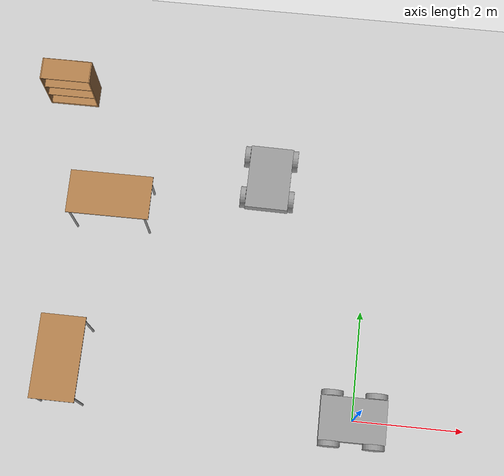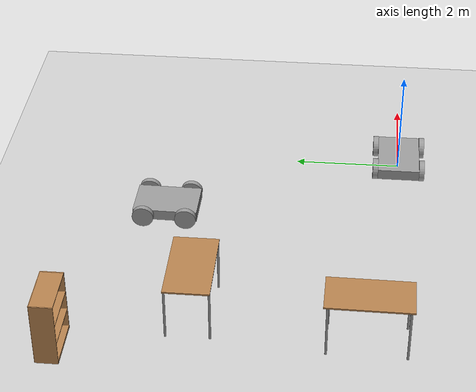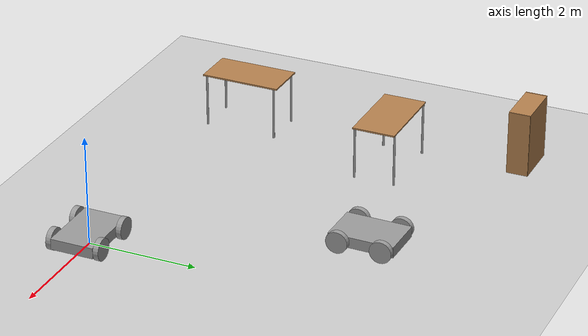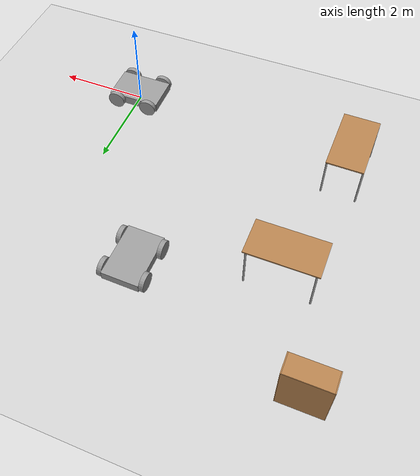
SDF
<sdf version="1.6">
 <world name="default">
  <model name="ground_plane">
   <static>1</static>
   <link name="link">
    <collision name="collision">
     <geometry><plane><normal>0 0 1</normal><size>100 100</size></plane></geometry>
     <surface>
      <contact><collide_bitmask>65535</collide_bitmask></contact>
      <friction><ode><mu>100</mu><mu2>50</mu2></ode></friction>
     </surface>
    </collision>
    <visual name="visual">
     <cast_shadows>0</cast_shadows>
     <geometry><plane><normal>0 0 1</normal><size>100 100</size></plane></geometry>
     <material>
      <script><uri>file://media/materials/scripts/gazebo.material</uri><name>Gazebo/Grey</name></script>
     </material>
    </visual>
   </link>
  </model>
  <model name="myrobot">
   <link name="link_0">
    <inertial>
     <mass>1</mass>
     <inertia>
      <ixx>0.166667</ixx>
      <ixy>0</ixy>
      <ixz>0</ixz>
      <iyy>0.166667</iyy>
      <iyz>0</iyz>
      <izz>0.166667</izz>
     </inertia>
    </inertial>
    <visual name="visual">
     <geometry><box><size>1.2 0.8 0.2</size></box></geometry>
     <material>
      <lighting>1</lighting>
      <script><uri>file://media/materials/scripts/gazebo.material</uri><name>Gazebo/Grey</name></script>
      <shader type="pixel"><normal_map>__default__</normal_map></shader>
      <ambient>0.3 0.3 0.3 1</ambient>
      <diffuse>0.7 0.7 0.7 1</diffuse>
      <specular>0.01 0.01 0.01 1</specular>
      <emissive>0 0 0 1</emissive>
     </material>
    </visual>
    <collision name="collision">
     <geometry><box><size>1.2 0.8 0.2</size></box></geometry>
     <surface>
      <friction>
       <ode><mu>1</mu><mu2>1</mu2><fdir1>0 0 0</fdir1><slip1>0</slip1><slip2>0</slip2></ode>
       <torsional>
        <coefficient>1</coefficient>
        <patch_radius>0</patch_radius>
        <surface_radius>0</surface_radius>
        <use_patch_radius>1</use_patch_radius>
        <ode><slip>0</slip></ode>
       </torsional>
      </friction>
      <bounce><restitution_coefficient>0</restitution_coefficient><threshold>1e+06</threshold></bounce>
      <contact>
       <collide_without_contact>0</collide_without_contact>
       <collide_without_contact_bitmask>1</collide_without_contact_bitmask>
       <collide_bitmask>1</collide_bitmask>
       <ode>
        <soft_cfm>0</soft_cfm>
        <soft_erp>0.2</soft_erp>
        <kp>1e+13</kp>
        <kd>1</kd>
        <max_vel>0.01</max_vel>
        <min_depth>0</min_depth>
       </ode>
       <bullet>
        <split_impulse>1</split_impulse>
        <split_impulse_penetration_threshold>-0.01</split_impulse_penetration_threshold>
        <soft_cfm>0</soft_cfm>
        <soft_erp>0.2</soft_erp>
        <kp>1e+13</kp>
        <kd>1</kd>
       </bullet>
      </contact>
     </surface>
    </collision>
   </link>
   <link name="link_4">
    <pose>-0.4 -0.450019 0 1.5707 -0 0</pose>
    <inertial>
     <mass>1</mass>
     <inertia><ixx>0.145833</ixx><ixy>0</ixy><ixz>0</ixz><iyy>0.145833</iyy><iyz>0</iyz><izz>0.125</izz></inertia>
    </inertial>
    <visual name="visual">
     <geometry><cylinder><radius>0.2</radius><length>0.1</length></cylinder></geometry>
     <material>
      <lighting>1</lighting>
      <script><uri>file://media/materials/scripts/gazebo.material</uri><name>Gazebo/Grey</name></script>
      <shader type="pixel"><normal_map>__default__</normal_map></shader>
      <ambient>0.3 0.3 0.3 1</ambient>
      <diffuse>0.7 0.7 0.7 1</diffuse>
      <specular>0.01 0.01 0.01 1</specular>
      <emissive>0 0 0 1</emissive>
     </material>
    </visual>
    <collision name="collision">
     <geometry><cylinder><radius>0.2</radius><length>0.1</length></cylinder></geometry>
     <surface>
      <friction>
       <ode><mu>1</mu><mu2>1</mu2><fdir1>0 0 0</fdir1><slip1>0</slip1><slip2>0</slip2></ode>
       <torsional>
        <coefficient>1</coefficient>
        <patch_radius>0</patch_radius>
        <surface_radius>0</surface_radius>
        <use_patch_radius>1</use_patch_radius>
        <ode><slip>0</slip></ode>
       </torsional>
      </friction>
      <bounce><restitution_coefficient>0</restitution_coefficient><threshold>1e+06</threshold></bounce>
      <contact>
       <collide_without_contact>0</collide_without_contact>
       <collide_without_contact_bitmask>1</collide_without_contact_bitmask>
       <collide_bitmask>1</collide_bitmask>
       <ode>
        <soft_cfm>0</soft_cfm>
        <soft_erp>0.2</soft_erp>
        <kp>1e+13</kp>
        <kd>1</kd>
        <max_vel>0.01</max_vel>
        <min_depth>0</min_depth>
       </ode>
       <bullet>
        <split_impulse>1</split_impulse>
        <split_impulse_penetration_threshold>-0.01</split_impulse_penetration_threshold>
        <soft_cfm>0</soft_cfm>
        <soft_erp>0.2</soft_erp>
        <kp>1e+13</kp>
        <kd>1</kd>
       </bullet>
      </contact>
     </surface>
    </collision>
   </link>
   <link name="link_4_clone">
    <pose>-0.4 0.450019 0 1.5707 -0 0</pose>
    <inertial>
     <mass>1</mass>
     <inertia><ixx>0.145833</ixx><ixy>0</ixy><ixz>0</ixz><iyy>0.145833</iyy><iyz>0</iyz><izz>0.125</izz></inertia>
    </inertial>
    <visual name="visual">
     <geometry><cylinder><radius>0.2</radius><length>0.1</length></cylinder></geometry>
     <material>
      <lighting>1</lighting>
      <script><uri>file://media/materials/scripts/gazebo.material</uri><name>Gazebo/Grey</name></script>
      <shader type="pixel"><normal_map>__default__</normal_map></shader>
      <ambient>0.3 0.3 0.3 1</ambient>
      <diffuse>0.7 0.7 0.7 1</diffuse>
      <specular>0.01 0.01 0.01 1</specular>
      <emissive>0 0 0 1</emissive>
     </material>
    </visual>
    <collision name="collision">
     <geometry><cylinder><radius>0.2</radius><length>0.1</length></cylinder></geometry>
     <surface>
      <friction>
       <ode><mu>1</mu><mu2>1</mu2><fdir1>0 0 0</fdir1><slip1>0</slip1><slip2>0</slip2></ode>
       <torsional>
        <coefficient>1</coefficient>
        <patch_radius>0</patch_radius>
        <surface_radius>0</surface_radius>
        <use_patch_radius>1</use_patch_radius>
        <ode><slip>0</slip></ode>
       </torsional>
      </friction>
      <bounce><restitution_coefficient>0</restitution_coefficient><threshold>1e+06</threshold></bounce>
      <contact>
       <collide_without_contact>0</collide_without_contact>
       <collide_without_contact_bitmask>1</collide_without_contact_bitmask>
       <collide_bitmask>1</collide_bitmask>
       <ode>
        <soft_cfm>0</soft_cfm>
        <soft_erp>0.2</soft_erp>
        <kp>1e+13</kp>
        <kd>1</kd>
        <max_vel>0.01</max_vel>
        <min_depth>0</min_depth>
       </ode>
       <bullet>
        <split_impulse>1</split_impulse>
        <split_impulse_penetration_threshold>-0.01</split_impulse_penetration_threshold>
        <soft_cfm>0</soft_cfm>
        <soft_erp>0.2</soft_erp>
        <kp>1e+13</kp>
        <kd>1</kd>
       </bullet>
      </contact>
     </surface>
    </collision>
   </link>
   <link name="link_4_clone_0">
    <pose>0.4 -0.450019 0 1.5707 -0 0</pose>
    <inertial>
     <mass>1</mass>
     <inertia><ixx>0.145833</ixx><ixy>0</ixy><ixz>0</ixz><iyy>0.145833</iyy><iyz>0</iyz><izz>0.125</izz></inertia>
    </inertial>
    <visual name="visual">
     <geometry><cylinder><radius>0.2</radius><length>0.1</length></cylinder></geometry>
     <material>
      <lighting>1</lighting>
      <script><uri>file://media/materials/scripts/gazebo.material</uri><name>Gazebo/Grey</name></script>
      <shader type="pixel"><normal_map>__default__</normal_map></shader>
      <ambient>0.3 0.3 0.3 1</ambient>
      <diffuse>0.7 0.7 0.7 1</diffuse>
      <specular>0.01 0.01 0.01 1</specular>
      <emissive>0 0 0 1</emissive>
     </material>
    </visual>
    <collision name="collision">
     <geometry><cylinder><radius>0.2</radius><length>0.1</length></cylinder></geometry>
     <surface>
      <friction>
       <ode><mu>1</mu><mu2>1</mu2><fdir1>0 0 0</fdir1><slip1>0</slip1><slip2>0</slip2></ode>
       <torsional>
        <coefficient>1</coefficient>
        <patch_radius>0</patch_radius>
        <surface_radius>0</surface_radius>
        <use_patch_radius>1</use_patch_radius>
        <ode><slip>0</slip></ode>
       </torsional>
      </friction>
      <bounce><restitution_coefficient>0</restitution_coefficient><threshold>1e+06</threshold></bounce>
      <contact>
       <collide_without_contact>0</collide_without_contact>
       <collide_without_contact_bitmask>1</collide_without_contact_bitmask>
       <collide_bitmask>1</collide_bitmask>
       <ode>
        <soft_cfm>0</soft_cfm>
        <soft_erp>0.2</soft_erp>
        <kp>1e+13</kp>
        <kd>1</kd>
        <max_vel>0.01</max_vel>
        <min_depth>0</min_depth>
       </ode>
       <bullet>
        <split_impulse>1</split_impulse>
        <split_impulse_penetration_threshold>-0.01</split_impulse_penetration_threshold>
        <soft_cfm>0</soft_cfm>
        <soft_erp>0.2</soft_erp>
        <kp>1e+13</kp>
        <kd>1</kd>
       </bullet>
      </contact>
     </surface>
    </collision>
   </link>
   <link name="link_4_clone_clone">
    <pose>0.4 0.450019 0 1.5707 -0 0</pose>
    <inertial>
     <mass>1</mass>
     <inertia><ixx>0.145833</ixx><ixy>0</ixy><ixz>0</ixz><iyy>0.145833</iyy><iyz>0</iyz><izz>0.125</izz></inertia>
    </inertial>
    <visual name="visual">
     <geometry><cylinder><radius>0.2</radius><length>0.1</length></cylinder></geometry>
     <material>
      <lighting>1</lighting>
      <script><uri>file://media/materials/scripts/gazebo.material</uri><name>Gazebo/Grey</name></script>
      <shader type="pixel"><normal_map>__default__</normal_map></shader>
      <ambient>0.3 0.3 0.3 1</ambient>
      <diffuse>0.7 0.7 0.7 1</diffuse>
      <specular>0.01 0.01 0.01 1</specular>
      <emissive>0 0 0 1</emissive>
     </material>
    </visual>
    <collision name="collision">
     <geometry><cylinder><radius>0.2</radius><length>0.1</length></cylinder></geometry>
     <surface>
      <friction>
       <ode><mu>1</mu><mu2>1</mu2><fdir1>0 0 0</fdir1><slip1>0</slip1><slip2>0</slip2></ode>
       <torsional>
        <coefficient>1</coefficient>
        <patch_radius>0</patch_radius>
        <surface_radius>0</surface_radius>
        <use_patch_radius>1</use_patch_radius>
        <ode><slip>0</slip></ode>
       </torsional>
      </friction>
      <bounce><restitution_coefficient>0</restitution_coefficient><threshold>1e+06</threshold></bounce>
      <contact>
       <collide_without_contact>0</collide_without_contact>
       <collide_without_contact_bitmask>1</collide_without_contact_bitmask>
       <collide_bitmask>1</collide_bitmask>
       <ode>
        <soft_cfm>0</soft_cfm>
        <soft_erp>0.2</soft_erp>
        <kp>1e+13</kp>
        <kd>1</kd>
        <max_vel>0.01</max_vel>
        <min_depth>0</min_depth>
       </ode>
       <bullet>
        <split_impulse>1</split_impulse>
        <split_impulse_penetration_threshold>-0.01</split_impulse_penetration_threshold>
        <soft_cfm>0</soft_cfm>
        <soft_erp>0.2</soft_erp>
        <kp>1e+13</kp>
        <kd>1</kd>
       </bullet>
      </contact>
     </surface>
    </collision>
   </link>
   <joint name="link_0_JOINT_6" type="revolute">
    <parent>link_0</parent>
    <child>link_4</child>
    <axis>
     <xyz>1 0 0</xyz>
     <use_parent_model_frame>0</use_parent_model_frame>
     <limit>
      <lower>-1.79769e+308</lower>
      <upper>1.79769e+308</upper>
      <effort>-1</effort>
      <velocity>-1</velocity>
     </limit>
     <dynamics>
      <spring_reference>0</spring_reference>
      <spring_stiffness>0</spring_stiffness>
      <damping>0</damping>
     </dynamics>
    </axis>
    <physics>
     <ode><limit><cfm>0</cfm><erp>0.2</erp></limit><suspension><cfm>0</cfm><erp>0.2</erp></suspension></ode>
    </physics>
   </joint>
   <joint name="link_0_JOINT_7" type="revolute">
    <parent>link_0</parent>
    <child>link_4_clone</child>
    <axis>
     <xyz>1 0 0</xyz>
     <use_parent_model_frame>0</use_parent_model_frame>
     <limit>
      <lower>-1.79769e+308</lower>
      <upper>1.79769e+308</upper>
      <effort>-1</effort>
      <velocity>-1</velocity>
     </limit>
     <dynamics>
      <spring_reference>0</spring_reference>
      <spring_stiffness>0</spring_stiffness>
      <damping>0</damping>
     </dynamics>
    </axis>
    <physics>
     <ode><limit><cfm>0</cfm><erp>0.2</erp></limit><suspension><cfm>0</cfm><erp>0.2</erp></suspension></ode>
    </physics>
   </joint>
   <joint name="link_0_JOINT_8" type="revolute">
    <parent>link_0</parent>
    <child>link_4_clone_0</child>
    <axis>
     <xyz>1 0 0</xyz>
     <use_parent_model_frame>0</use_parent_model_frame>
     <limit>
      <lower>-1.79769e+308</lower>
      <upper>1.79769e+308</upper>
      <effort>-1</effort>
      <velocity>-1</velocity>
     </limit>
     <dynamics>
      <spring_reference>0</spring_reference>
      <spring_stiffness>0</spring_stiffness>
      <damping>0</damping>
     </dynamics>
    </axis>
    <physics>
     <ode><limit><cfm>0</cfm><erp>0.2</erp></limit><suspension><cfm>0</cfm><erp>0.2</erp></suspension></ode>
    </physics>
   </joint>
   <joint name="link_0_JOINT_9" type="revolute">
    <parent>link_0</parent>
    <child>link_4_clone_clone</child>
    <axis>
     <xyz>1 0 0</xyz>
     <use_parent_model_frame>0</use_parent_model_frame>
     <limit>
      <lower>-1.79769e+308</lower>
      <upper>1.79769e+308</upper>
      <effort>-1</effort>
      <velocity>-1</velocity>
     </limit>
     <dynamics>
      <spring_reference>0</spring_reference>
      <spring_stiffness>0</spring_stiffness>
      <damping>0</damping>
     </dynamics>
    </axis>
    <physics>
     <ode><limit><cfm>0</cfm><erp>0.2</erp></limit><suspension><cfm>0</cfm><erp>0.2</erp></suspension></ode>
    </physics>
   </joint>
   <static>0</static>
   <pose>-0.000763 -0.003639 0.199997 -6e-06 0 0.001972</pose>
  </model>
  <model name="table">
   <static>1</static>
   <link name="link">
    <collision name="surface">
     <pose>0 0 1 0 -0 0</pose>
     <geometry><box><size>1.5 0.8 0.03</size></box></geometry>
     <surface><friction><ode><mu>0.6</mu><mu2>0.6</mu2></ode></friction></surface>
    </collision>
    <visual name="visual1">
     <pose>0 0 1 0 -0 0</pose>
     <geometry><box><size>1.5 0.8 0.03</size></box></geometry>
     <material>
      <script><uri>file://media/materials/scripts/gazebo.material</uri><name>Gazebo/Wood</name></script>
     </material>
    </visual>
    <collision name="front_left_leg">
     <pose>0.68 0.38 0.5 0 -0 0</pose>
     <geometry><cylinder><radius>0.02</radius><length>1</length></cylinder></geometry>
    </collision>
    <visual name="front_left_leg">
     <pose>0.68 0.38 0.5 0 -0 0</pose>
     <geometry><cylinder><radius>0.02</radius><length>1</length></cylinder></geometry>
     <material>
      <script><uri>file://media/materials/scripts/gazebo.material</uri><name>Gazebo/Grey</name></script>
     </material>
    </visual>
    <collision name="front_right_leg">
     <pose>0.68 -0.38 0.5 0 -0 0</pose>
     <geometry><cylinder><radius>0.02</radius><length>1</length></cylinder></geometry>
    </collision>
    <visual name="front_right_leg">
     <pose>0.68 -0.38 0.5 0 -0 0</pose>
     <geometry><cylinder><radius>0.02</radius><length>1</length></cylinder></geometry>
     <material>
      <script><uri>file://media/materials/scripts/gazebo.material</uri><name>Gazebo/Grey</name></script>
     </material>
    </visual>
    <collision name="back_right_leg">
     <pose>-0.68 -0.38 0.5 0 -0 0</pose>
     <geometry><cylinder><radius>0.02</radius><length>1</length></cylinder></geometry>
    </collision>
    <visual name="back_right_leg">
     <pose>-0.68 -0.38 0.5 0 -0 0</pose>
     <geometry><cylinder><radius>0.02</radius><length>1</length></cylinder></geometry>
     <material>
      <script><uri>file://media/materials/scripts/gazebo.material</uri><name>Gazebo/Grey</name></script>
     </material>
    </visual>
    <collision name="back_left_leg">
     <pose>-0.68 0.38 0.5 0 -0 0</pose>
     <geometry><cylinder><radius>0.02</radius><length>1</length></cylinder></geometry>
    </collision>
    <visual name="back_left_leg">
     <pose>-0.68 0.38 0.5 0 -0 0</pose>
     <geometry><cylinder><radius>0.02</radius><length>1</length></cylinder></geometry>
     <material>
      <script><uri>file://media/materials/scripts/gazebo.material</uri><name>Gazebo/Grey</name></script>
     </material>
    </visual>
   </link>
   <pose>-4.73527 3.51811 0 0 -0 0</pose>
  </model>
  <model name="table_clone_clone_0">
   <static>1</static>
   <link name="link">
    <collision name="surface">
     <pose>0 0 1 0 -0 0</pose>
     <geometry><box><size>1.5 0.8 0.03</size></box></geometry>
     <surface><friction><ode><mu>0.6</mu><mu2>0.6</mu2></ode></friction></surface>
    </collision>
    <visual name="visual1">
     <pose>0 0 1 0 -0 0</pose>
     <geometry><box><size>1.5 0.8 0.03</size></box></geometry>
     <material>
      <script><uri>file://media/materials/scripts/gazebo.material</uri><name>Gazebo/Wood</name></script>
     </material>
    </visual>
    <collision name="front_left_leg">
     <pose>0.68 0.38 0.5 0 -0 0</pose>
     <geometry><cylinder><radius>0.02</radius><length>1</length></cylinder></geometry>
    </collision>
    <visual name="front_left_leg">
     <pose>0.68 0.38 0.5 0 -0 0</pose>
     <geometry><cylinder><radius>0.02</radius><length>1</length></cylinder></geometry>
     <material>
      <script><uri>file://media/materials/scripts/gazebo.material</uri><name>Gazebo/Grey</name></script>
     </material>
    </visual>
    <collision name="front_right_leg">
     <pose>0.68 -0.38 0.5 0 -0 0</pose>
     <geometry><cylinder><radius>0.02</radius><length>1</length></cylinder></geometry>
    </collision>
    <visual name="front_right_leg">
     <pose>0.68 -0.38 0.5 0 -0 0</pose>
     <geometry><cylinder><radius>0.02</radius><length>1</length></cylinder></geometry>
     <material>
      <script><uri>file://media/materials/scripts/gazebo.material</uri><name>Gazebo/Grey</name></script>
     </material>
    </visual>
    <collision name="back_right_leg">
     <pose>-0.68 -0.38 0.5 0 -0 0</pose>
     <geometry><cylinder><radius>0.02</radius><length>1</length></cylinder></geometry>
    </collision>
    <visual name="back_right_leg">
     <pose>-0.68 -0.38 0.5 0 -0 0</pose>
     <geometry><cylinder><radius>0.02</radius><length>1</length></cylinder></geometry>
     <material>
      <script><uri>file://media/materials/scripts/gazebo.material</uri><name>Gazebo/Grey</name></script>
     </material>
    </visual>
    <collision name="back_left_leg">
     <pose>-0.68 0.38 0.5 0 -0 0</pose>
     <geometry><cylinder><radius>0.02</radius><length>1</length></cylinder></geometry>
    </collision>
    <visual name="back_left_leg">
     <pose>-0.68 0.38 0.5 0 -0 0</pose>
     <geometry><cylinder><radius>0.02</radius><length>1</length></cylinder></geometry>
     <material>
      <script><uri>file://media/materials/scripts/gazebo.material</uri><name>Gazebo/Grey</name></script>
     </material>
    </visual>
   </link>
   <pose>-5.24453 0.50186 0 0 -0 1.5628</pose>
  </model>
  <model name="myrobot_clone">
   <link name="link_0">
    <inertial>
     <mass>1</mass>
     <inertia>
      <ixx>0.166667</ixx>
      <ixy>0</ixy>
      <ixz>0</ixz>
      <iyy>0.166667</iyy>
      <iyz>0</iyz>
      <izz>0.166667</izz>
     </inertia>
    </inertial>
    <visual name="visual">
     <geometry><box><size>1.2 0.8 0.2</size></box></geometry>
     <material>
      <lighting>1</lighting>
      <script><uri>file://media/materials/scripts/gazebo.material</uri><name>Gazebo/Grey</name></script>
      <shader type="pixel"><normal_map>__default__</normal_map></shader>
      <ambient>0.3 0.3 0.3 1</ambient>
      <diffuse>0.7 0.7 0.7 1</diffuse>
      <specular>0.01 0.01 0.01 1</specular>
      <emissive>0 0 0 1</emissive>
     </material>
    </visual>
    <collision name="collision">
     <geometry><box><size>1.2 0.8 0.2</size></box></geometry>
     <surface>
      <friction>
       <ode><mu>1</mu><mu2>1</mu2><fdir1>0 0 0</fdir1><slip1>0</slip1><slip2>0</slip2></ode>
       <torsional>
        <coefficient>1</coefficient>
        <patch_radius>0</patch_radius>
        <surface_radius>0</surface_radius>
        <use_patch_radius>1</use_patch_radius>
        <ode><slip>0</slip></ode>
       </torsional>
      </friction>
      <bounce><restitution_coefficient>0</restitution_coefficient><threshold>1e+06</threshold></bounce>
      <contact>
       <collide_without_contact>0</collide_without_contact>
       <collide_without_contact_bitmask>1</collide_without_contact_bitmask>
       <collide_bitmask>1</collide_bitmask>
       <ode>
        <soft_cfm>0</soft_cfm>
        <soft_erp>0.2</soft_erp>
        <kp>1e+13</kp>
        <kd>1</kd>
        <max_vel>0.01</max_vel>
        <min_depth>0</min_depth>
       </ode>
       <bullet>
        <split_impulse>1</split_impulse>
        <split_impulse_penetration_threshold>-0.01</split_impulse_penetration_threshold>
        <soft_cfm>0</soft_cfm>
        <soft_erp>0.2</soft_erp>
        <kp>1e+13</kp>
        <kd>1</kd>
       </bullet>
      </contact>
     </surface>
    </collision>
   </link>
   <link name="link_4">
    <pose>-0.4 -0.450019 0 1.5707 -0 0</pose>
    <inertial>
     <mass>1</mass>
     <inertia><ixx>0.145833</ixx><ixy>0</ixy><ixz>0</ixz><iyy>0.145833</iyy><iyz>0</iyz><izz>0.125</izz></inertia>
    </inertial>
    <visual name="visual">
     <geometry><cylinder><radius>0.2</radius><length>0.1</length></cylinder></geometry>
     <material>
      <lighting>1</lighting>
      <script><uri>file://media/materials/scripts/gazebo.material</uri><name>Gazebo/Grey</name></script>
      <shader type="pixel"><normal_map>__default__</normal_map></shader>
      <ambient>0.3 0.3 0.3 1</ambient>
      <diffuse>0.7 0.7 0.7 1</diffuse>
      <specular>0.01 0.01 0.01 1</specular>
      <emissive>0 0 0 1</emissive>
     </material>
    </visual>
    <collision name="collision">
     <geometry><cylinder><radius>0.2</radius><length>0.1</length></cylinder></geometry>
     <surface>
      <friction>
       <ode><mu>1</mu><mu2>1</mu2><fdir1>0 0 0</fdir1><slip1>0</slip1><slip2>0</slip2></ode>
       <torsional>
        <coefficient>1</coefficient>
        <patch_radius>0</patch_radius>
        <surface_radius>0</surface_radius>
        <use_patch_radius>1</use_patch_radius>
        <ode><slip>0</slip></ode>
       </torsional>
      </friction>
      <bounce><restitution_coefficient>0</restitution_coefficient><threshold>1e+06</threshold></bounce>
      <contact>
       <collide_without_contact>0</collide_without_contact>
       <collide_without_contact_bitmask>1</collide_without_contact_bitmask>
       <collide_bitmask>1</collide_bitmask>
       <ode>
        <soft_cfm>0</soft_cfm>
        <soft_erp>0.2</soft_erp>
        <kp>1e+13</kp>
        <kd>1</kd>
        <max_vel>0.01</max_vel>
        <min_depth>0</min_depth>
       </ode>
       <bullet>
        <split_impulse>1</split_impulse>
        <split_impulse_penetration_threshold>-0.01</split_impulse_penetration_threshold>
        <soft_cfm>0</soft_cfm>
        <soft_erp>0.2</soft_erp>
        <kp>1e+13</kp>
        <kd>1</kd>
       </bullet>
      </contact>
     </surface>
    </collision>
   </link>
   <link name="link_4_clone">
    <pose>-0.4 0.450019 0 1.5707 -0 0</pose>
    <inertial>
     <mass>1</mass>
     <inertia><ixx>0.145833</ixx><ixy>0</ixy><ixz>0</ixz><iyy>0.145833</iyy><iyz>0</iyz><izz>0.125</izz></inertia>
    </inertial>
    <visual name="visual">
     <geometry><cylinder><radius>0.2</radius><length>0.1</length></cylinder></geometry>
     <material>
      <lighting>1</lighting>
      <script><uri>file://media/materials/scripts/gazebo.material</uri><name>Gazebo/Grey</name></script>
      <shader type="pixel"><normal_map>__default__</normal_map></shader>
      <ambient>0.3 0.3 0.3 1</ambient>
      <diffuse>0.7 0.7 0.7 1</diffuse>
      <specular>0.01 0.01 0.01 1</specular>
      <emissive>0 0 0 1</emissive>
     </material>
    </visual>
    <collision name="collision">
     <geometry><cylinder><radius>0.2</radius><length>0.1</length></cylinder></geometry>
     <surface>
      <friction>
       <ode><mu>1</mu><mu2>1</mu2><fdir1>0 0 0</fdir1><slip1>0</slip1><slip2>0</slip2></ode>
       <torsional>
        <coefficient>1</coefficient>
        <patch_radius>0</patch_radius>
        <surface_radius>0</surface_radius>
        <use_patch_radius>1</use_patch_radius>
        <ode><slip>0</slip></ode>
       </torsional>
      </friction>
      <bounce><restitution_coefficient>0</restitution_coefficient><threshold>1e+06</threshold></bounce>
      <contact>
       <collide_without_contact>0</collide_without_contact>
       <collide_without_contact_bitmask>1</collide_without_contact_bitmask>
       <collide_bitmask>1</collide_bitmask>
       <ode>
        <soft_cfm>0</soft_cfm>
        <soft_erp>0.2</soft_erp>
        <kp>1e+13</kp>
        <kd>1</kd>
        <max_vel>0.01</max_vel>
        <min_depth>0</min_depth>
       </ode>
       <bullet>
        <split_impulse>1</split_impulse>
        <split_impulse_penetration_threshold>-0.01</split_impulse_penetration_threshold>
        <soft_cfm>0</soft_cfm>
        <soft_erp>0.2</soft_erp>
        <kp>1e+13</kp>
        <kd>1</kd>
       </bullet>
      </contact>
     </surface>
    </collision>
   </link>
   <link name="link_4_clone_0">
    <pose>0.4 -0.450019 0 1.5707 -0 0</pose>
    <inertial>
     <mass>1</mass>
     <inertia><ixx>0.145833</ixx><ixy>0</ixy><ixz>0</ixz><iyy>0.145833</iyy><iyz>0</iyz><izz>0.125</izz></inertia>
    </inertial>
    <visual name="visual">
     <geometry><cylinder><radius>0.2</radius><length>0.1</length></cylinder></geometry>
     <material>
      <lighting>1</lighting>
      <script><uri>file://media/materials/scripts/gazebo.material</uri><name>Gazebo/Grey</name></script>
      <shader type="pixel"><normal_map>__default__</normal_map></shader>
      <ambient>0.3 0.3 0.3 1</ambient>
      <diffuse>0.7 0.7 0.7 1</diffuse>
      <specular>0.01 0.01 0.01 1</specular>
      <emissive>0 0 0 1</emissive>
     </material>
    </visual>
    <collision name="collision">
     <geometry><cylinder><radius>0.2</radius><length>0.1</length></cylinder></geometry>
     <surface>
      <friction>
       <ode><mu>1</mu><mu2>1</mu2><fdir1>0 0 0</fdir1><slip1>0</slip1><slip2>0</slip2></ode>
       <torsional>
        <coefficient>1</coefficient>
        <patch_radius>0</patch_radius>
        <surface_radius>0</surface_radius>
        <use_patch_radius>1</use_patch_radius>
        <ode><slip>0</slip></ode>
       </torsional>
      </friction>
      <bounce><restitution_coefficient>0</restitution_coefficient><threshold>1e+06</threshold></bounce>
      <contact>
       <collide_without_contact>0</collide_without_contact>
       <collide_without_contact_bitmask>1</collide_without_contact_bitmask>
       <collide_bitmask>1</collide_bitmask>
       <ode>
        <soft_cfm>0</soft_cfm>
        <soft_erp>0.2</soft_erp>
        <kp>1e+13</kp>
        <kd>1</kd>
        <max_vel>0.01</max_vel>
        <min_depth>0</min_depth>
       </ode>
       <bullet>
        <split_impulse>1</split_impulse>
        <split_impulse_penetration_threshold>-0.01</split_impulse_penetration_threshold>
        <soft_cfm>0</soft_cfm>
        <soft_erp>0.2</soft_erp>
        <kp>1e+13</kp>
        <kd>1</kd>
       </bullet>
      </contact>
     </surface>
    </collision>
   </link>
   <link name="link_4_clone_clone">
    <pose>0.4 0.450019 0 1.5707 -0 0</pose>
    <inertial>
     <mass>1</mass>
     <inertia><ixx>0.145833</ixx><ixy>0</ixy><ixz>0</ixz><iyy>0.145833</iyy><iyz>0</iyz><izz>0.125</izz></inertia>
    </inertial>
    <visual name="visual">
     <geometry><cylinder><radius>0.2</radius><length>0.1</length></cylinder></geometry>
     <material>
      <lighting>1</lighting>
      <script><uri>file://media/materials/scripts/gazebo.material</uri><name>Gazebo/Grey</name></script>
      <shader type="pixel"><normal_map>__default__</normal_map></shader>
      <ambient>0.3 0.3 0.3 1</ambient>
      <diffuse>0.7 0.7 0.7 1</diffuse>
      <specular>0.01 0.01 0.01 1</specular>
      <emissive>0 0 0 1</emissive>
     </material>
    </visual>
    <collision name="collision">
     <geometry><cylinder><radius>0.2</radius><length>0.1</length></cylinder></geometry>
     <surface>
      <friction>
       <ode><mu>1</mu><mu2>1</mu2><fdir1>0 0 0</fdir1><slip1>0</slip1><slip2>0</slip2></ode>
       <torsional>
        <coefficient>1</coefficient>
        <patch_radius>0</patch_radius>
        <surface_radius>0</surface_radius>
        <use_patch_radius>1</use_patch_radius>
        <ode><slip>0</slip></ode>
       </torsional>
      </friction>
      <bounce><restitution_coefficient>0</restitution_coefficient><threshold>1e+06</threshold></bounce>
      <contact>
       <collide_without_contact>0</collide_without_contact>
       <collide_without_contact_bitmask>1</collide_without_contact_bitmask>
       <collide_bitmask>1</collide_bitmask>
       <ode>
        <soft_cfm>0</soft_cfm>
        <soft_erp>0.2</soft_erp>
        <kp>1e+13</kp>
        <kd>1</kd>
        <max_vel>0.01</max_vel>
        <min_depth>0</min_depth>
       </ode>
       <bullet>
        <split_impulse>1</split_impulse>
        <split_impulse_penetration_threshold>-0.01</split_impulse_penetration_threshold>
        <soft_cfm>0</soft_cfm>
        <soft_erp>0.2</soft_erp>
        <kp>1e+13</kp>
        <kd>1</kd>
       </bullet>
      </contact>
     </surface>
    </collision>
   </link>
   <joint name="link_0_JOINT_6" type="revolute">
    <parent>link_0</parent>
    <child>link_4</child>
    <axis>
     <xyz>1 0 0</xyz>
     <use_parent_model_frame>0</use_parent_model_frame>
     <limit>
      <lower>-1.79769e+308</lower>
      <upper>1.79769e+308</upper>
      <effort>-1</effort>
      <velocity>-1</velocity>
     </limit>
     <dynamics>
      <spring_reference>0</spring_reference>
      <spring_stiffness>0</spring_stiffness>
      <damping>0</damping>
     </dynamics>
    </axis>
    <physics>
     <ode><limit><cfm>0</cfm><erp>0.2</erp></limit><suspension><cfm>0</cfm><erp>0.2</erp></suspension></ode>
    </physics>
   </joint>
   <joint name="link_0_JOINT_7" type="revolute">
    <parent>link_0</parent>
    <child>link_4_clone</child>
    <axis>
     <xyz>1 0 0</xyz>
     <use_parent_model_frame>0</use_parent_model_frame>
     <limit>
      <lower>-1.79769e+308</lower>
      <upper>1.79769e+308</upper>
      <effort>-1</effort>
      <velocity>-1</velocity>
     </limit>
     <dynamics>
      <spring_reference>0</spring_reference>
      <spring_stiffness>0</spring_stiffness>
      <damping>0</damping>
     </dynamics>
    </axis>
    <physics>
     <ode><limit><cfm>0</cfm><erp>0.2</erp></limit><suspension><cfm>0</cfm><erp>0.2</erp></suspension></ode>
    </physics>
   </joint>
   <joint name="link_0_JOINT_8" type="revolute">
    <parent>link_0</parent>
    <child>link_4_clone_0</child>
    <axis>
     <xyz>1 0 0</xyz>
     <use_parent_model_frame>0</use_parent_model_frame>
     <limit>
      <lower>-1.79769e+308</lower>
      <upper>1.79769e+308</upper>
      <effort>-1</effort>
      <velocity>-1</velocity>
     </limit>
     <dynamics>
      <spring_reference>0</spring_reference>
      <spring_stiffness>0</spring_stiffness>
      <damping>0</damping>
     </dynamics>
    </axis>
    <physics>
     <ode><limit><cfm>0</cfm><erp>0.2</erp></limit><suspension><cfm>0</cfm><erp>0.2</erp></suspension></ode>
    </physics>
   </joint>
   <joint name="link_0_JOINT_9" type="revolute">
    <parent>link_0</parent>
    <child>link_4_clone_clone</child>
    <axis>
     <xyz>1 0 0</xyz>
     <use_parent_model_frame>0</use_parent_model_frame>
     <limit>
      <lower>-1.79769e+308</lower>
      <upper>1.79769e+308</upper>
      <effort>-1</effort>
      <velocity>-1</velocity>
     </limit>
     <dynamics>
      <spring_reference>0</spring_reference>
      <spring_stiffness>0</spring_stiffness>
      <damping>0</damping>
     </dynamics>
    </axis>
    <physics>
     <ode><limit><cfm>0</cfm><erp>0.2</erp></limit><suspension><cfm>0</cfm><erp>0.2</erp></suspension></ode>
    </physics>
   </joint>
   <static>0</static>
   <pose>-1.9118 4.34056 0.2 0 -0 1.55539</pose>
  </model>
  <model name="bookshelf_clone">
   <static>1</static>
   <link name="link">
    <inertial><mass>1</mass></inertial>
    <collision name="back">
     <pose>0 0.005 0.6 0 -0 0</pose>
     <geometry><box><size>0.9 0.01 1.2</size></box></geometry>
    </collision>
    <visual name="visual1">
     <pose>0 0.005 0.6 0 -0 0</pose>
     <geometry><box><size>0.9 0.01 1.2</size></box></geometry>
     <material>
      <script><uri>file://media/materials/scripts/gazebo.material</uri><name>Gazebo/Wood</name></script>
     </material>
    </visual>
    <collision name="left_side">
     <pose>0.45 -0.195 0.6 0 -0 0</pose>
     <geometry><box><size>0.02 0.4 1.2</size></box></geometry>
    </collision>
    <visual name="visual2">
     <pose>0.45 -0.195 0.6 0 -0 0</pose>
     <geometry><box><size>0.02 0.4 1.2</size></box></geometry>
     <material>
      <script><uri>file://media/materials/scripts/gazebo.material</uri><name>Gazebo/Wood</name></script>
     </material>
    </visual>
    <collision name="right_side">
     <pose>-0.45 -0.195 0.6 0 -0 0</pose>
     <geometry><box><size>0.02 0.4 1.2</size></box></geometry>
    </collision>
    <visual name="visual3">
     <pose>-0.45 -0.195 0.6 0 -0 0</pose>
     <geometry><box><size>0.02 0.4 1.2</size></box></geometry>
     <material>
      <script><uri>file://media/materials/scripts/gazebo.material</uri><name>Gazebo/Wood</name></script>
     </material>
    </visual>
    <collision name="bottom">
     <pose>0 -0.195 0.03 0 -0 0</pose>
     <geometry><box><size>0.88 0.4 0.06</size></box></geometry>
    </collision>
    <visual name="visual4">
     <pose>0 -0.195 0.03 0 -0 0</pose>
     <geometry><box><size>0.88 0.4 0.06</size></box></geometry>
     <material>
      <script><uri>file://media/materials/scripts/gazebo.material</uri><name>Gazebo/Wood</name></script>
     </material>
    </visual>
    <collision name="top">
     <pose>0 -0.195 1.19 0 -0 0</pose>
     <geometry><box><size>0.88 0.4 0.02</size></box></geometry>
    </collision>
    <visual name="visual5">
     <pose>0 -0.195 1.19 0 -0 0</pose>
     <geometry><box><size>0.88 0.4 0.02</size></box></geometry>
     <material>
      <script><uri>file://media/materials/scripts/gazebo.material</uri><name>Gazebo/Wood</name></script>
     </material>
    </visual>
    <collision name="low_shelf">
     <pose>0 -0.195 0.43 0 -0 0</pose>
     <geometry><box><size>0.88 0.4 0.02</size></box></geometry>
    </collision>
    <visual name="visual6">
     <pose>0 -0.195 0.43 0 -0 0</pose>
     <geometry><box><size>0.88 0.4 0.02</size></box></geometry>
     <material>
      <script><uri>file://media/materials/scripts/gazebo.material</uri><name>Gazebo/Wood</name></script>
     </material>
    </visual>
    <collision name="high_shelf">
     <pose>0 -0.195 0.8 0 -0 0</pose>
     <geometry><box><size>0.88 0.4 0.02</size></box></geometry>
    </collision>
    <visual name="visual7">
     <pose>0 -0.195 0.8 0 -0 0</pose>
     <geometry><box><size>0.88 0.4 0.02</size></box></geometry>
     <material>
      <script><uri>file://media/materials/scripts/gazebo.material</uri><name>Gazebo/Wood</name></script>
     </material>
    </visual>
   </link>
   <pose>-5.80837 5.94116 0 0 -0 0</pose>
  </model>
 </world>
</sdf>
